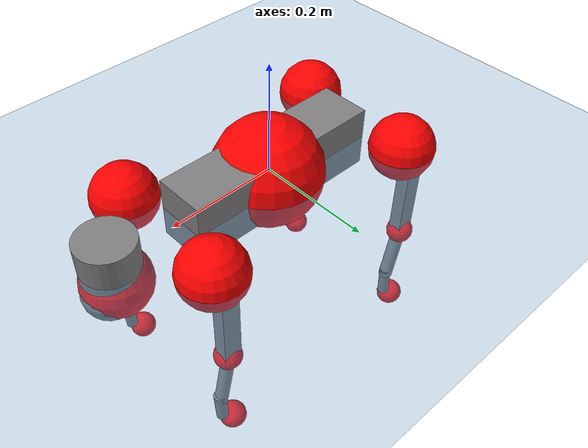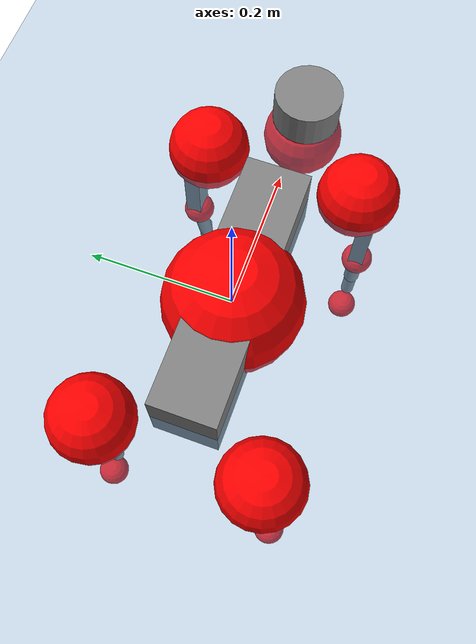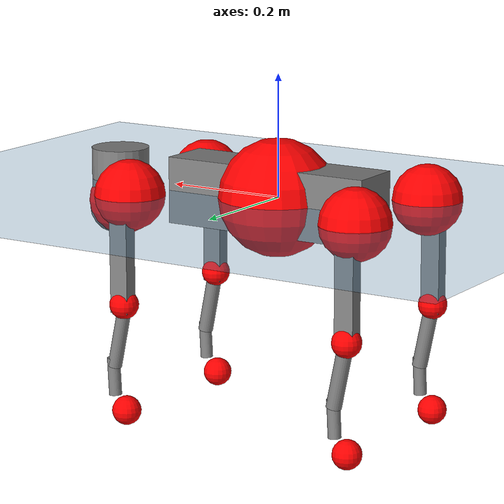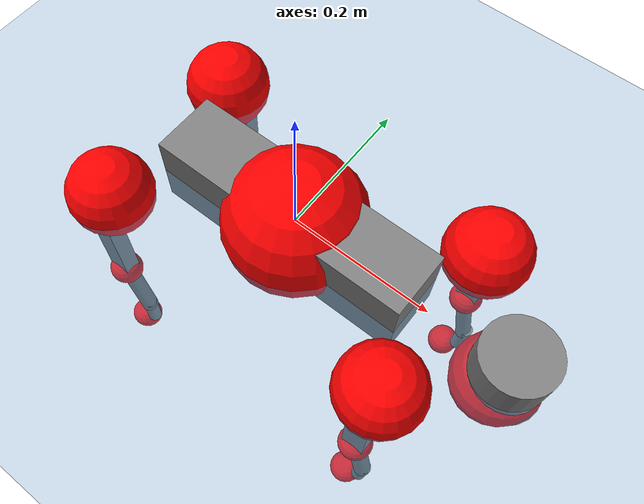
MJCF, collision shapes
<mujoco model="go2">
  <compiler angle="radian" assetdir="assets" balanceinertia="true" inertiafromgeom="false"/>

  <option timestep="0.005" density="1.2" viscosity="2e-05"/>

  <size nkey="1"/>

  <visual>
    <quality shadowsize="8192"/>
    <map shadowclip="0.5"/>
  </visual>

  <default>
    <default class="/">
      <geom contype="0" conaffinity="0" group="1" solref="-1000 -80"/>
      <site size="0.01 0.005 0.005" group="5"/>
      <general forcelimited="true" biastype="affine" gainprm="20" biasprm="0 -20 -0.5"/>
      <default class="go2">
        <joint armature="0.01" damping="0.01" frictionloss="0.2"/>
        <geom condim="1" margin="0.001"/>
        <default class="visual">
          <geom type="mesh" group="2"/>
        </default>
        <default class="collision">
          <geom group="3"/>
          <default class="foot">
            <geom size="0.022 0 0" condim="6" priority="1" friction="0.8 0.02 0.01" solimp="0.015 1 0.022"/>
          </default>
        </default>
        <default class="reward_collision_sphere">
          <geom group="5" rgba="1 0 0 1"/>
        </default>
      </default>
    </default>
  </default>

  <asset>
    <texture type="skybox" colorspace="auto" name="//unnamed_texture_0" builtin="gradient" rgb1="0.95 0.95 0.95" rgb2="0.95 0.95 0.95" width="100" height="600"/>
    <texture type="2d" colorspace="auto" name="texplane" builtin="checker" rgb1="0.345 0.575 0.748" rgb2="0.345 0.575 0.748" markrgb="1 1 1" width="512" height="512"/>
    <material name="MatPlane" class="/" texture="texplane" texuniform="true" texrepeat="2 2" specular="0.9"/>
    <material name="metal" class="/" rgba="0.9 0.95 0.95 1"/>
    <material name="black" class="/" rgba="0 0 0 1"/>
    <material name="white" class="/"/>
    <material name="gray" class="/" rgba="0.671705 0.692426 0.77427 1"/>
    <mesh name="base_0" class="/" file="base_0.obj"/>
    <mesh name="base_1" class="/" file="base_1.obj"/>
    <mesh name="base_2" class="/" file="base_2.obj"/>
    <mesh name="base_3" class="/" file="base_3.obj"/>
    <mesh name="base_4" class="/" file="base_4.obj"/>
    <mesh name="hip_0" class="/" file="hip_0.obj"/>
    <mesh name="hip_1" class="/" file="hip_1.obj"/>
    <mesh name="thigh_0" class="/" file="thigh_0.obj"/>
    <mesh name="thigh_1" class="/" file="thigh_1.obj"/>
    <mesh name="thigh_mirror_0" class="/" file="thigh_mirror_0.obj"/>
    <mesh name="thigh_mirror_1" class="/" file="thigh_mirror_1.obj"/>
    <mesh name="calf_0" class="/" file="calf_0.obj"/>
    <mesh name="calf_1" class="/" file="calf_1.obj"/>
    <mesh name="calf_mirror_0" class="/" file="calf_mirror_0.obj"/>
    <mesh name="calf_mirror_1" class="/" file="calf_mirror_1.obj"/>
    <mesh name="foot" class="/" file="foot.obj"/>
  </asset>

  <worldbody>
    <geom name="floor" class="/" size="100 100 0.125" type="plane" group="0" material="MatPlane"/>
    <light name="toplight_shadow" class="/" pos="0 0 5" dir="0.0990148 0.0990148 -0.990148" type="directional" ambient="0.04 0.04 0.04" diffuse="0.55 0.55 0.55" specular="0.12 0.12 0.12"/>
    <light name="toplight_fill" class="/" pos="0 0 5" dir="0.0990148 0.0990148 -0.990148" type="directional" castshadow="false" ambient="0.04 0.04 0.04" diffuse="0.3 0.3 0.3" specular="0.08 0.08 0.08"/>
    <body name="trunk" childclass="go2" pos="0.0017884 -0.0010275 -0.000459634" quat="1 -9.23437e-05 -5.38427e-05 -0.00025286">
      <inertial pos="0.0229154 -0.000598303 -0.00475864" quat="-0.00218841 0.713565 -0.00385329 0.700575" mass="6.12831" diaginertia="0.170952 0.0807151 0.0103947"/>
      <joint name="//unnamed_joint_0" type="free" armature="0" damping="0" frictionloss="0"/>
      <geom name="//unnamed_geom_1" class="visual" material="black" mesh="base_0"/>
      <geom name="//unnamed_geom_2" class="visual" material="black" mesh="base_1"/>
      <geom name="//unnamed_geom_3" class="visual" material="black" mesh="base_2"/>
      <geom name="//unnamed_geom_4" class="visual" material="white" mesh="base_3"/>
      <geom name="//unnamed_geom_5" class="visual" material="gray" mesh="base_4"/>
      <geom name="trunk_1" class="collision" size="0.181253 0.0450483 0.0549252" type="box"/>
      <geom name="trunk_2" class="collision" size="0.04818 0.043362" pos="0.310575 0 0.00842135" type="cylinder"/>
      <geom name="trunk_3" class="collision" size="0.0452892" pos="0.319293 0 -0.0505281"/>
      <geom name="//unnamed_geom_9" class="reward_collision_sphere" size="0.0963599"/>
      <geom name="//unnamed_geom_10" class="reward_collision_sphere" size="0.057816" pos="0.305126 0 -0.0378961"/>
      <site name="imu" pos="-0.031686 -0.00189948 0.0244286" size="0.00963599"/>
      <camera name="track" pos="0 -1.91785 0" quat="0.707107 0.707107 0 0" mode="trackcom"/>
      <camera name="ego_camera" pos="0.339998 0 0.0378961" quat="-0.5 -0.5 0.5 0.5"/>
      <body name="FL_hip" pos="0.211077 0.0454303 0.000697607" quat="1 -0.000150632 5.95875e-05 -0.000632394">
        <inertial pos="-0.00778117 0.00299735 0.000165746" quat="0.496962 0.499585 0.505171 0.498242" mass="0.609414" diaginertia="0.00136351 0.000479726 0.000202159"/>
        <joint name="FL_hip_joint" pos="0 0 0" axis="0.999897 -0.0118702 0.00811294" range="-1.05928 1.04985" armature="0.00854019" damping="0.0068731" frictionloss="0.185605"/>
        <geom name="//unnamed_geom_11" class="visual" material="metal" mesh="hip_0"/>
        <geom name="//unnamed_geom_12" class="visual" material="gray" mesh="hip_1"/>
        <geom name="//unnamed_geom_13" class="collision" size="0.0443256 0.019272" pos="0 0.0767141 0" quat="0.707107 0.707107 0 0" type="cylinder"/>
        <geom name="//unnamed_geom_14" class="reward_collision_sphere" size="0.057816" pos="0 0.0671248 0"/>
        <body name="FL_thigh" pos="-0.000768065 0.0922134 0.000986306" quat="1 0.000155227 -0.000375195 7.87833e-05">
          <inertial pos="-0.00476527 -0.0212381 -0.029708" quat="0.831264 0.0840454 -0.0227141 0.549018" mass="1.04619" diaginertia="0.00923552 0.00479375 0.000377875"/>
          <joint name="FL_thigh_joint" pos="0 0 0" axis="0.000633036 0.999974 0.00724298" range="-1.59022 3.49" armature="0.0103357" damping="0.00419746" frictionloss="0.195727"/>
          <geom name="//unnamed_geom_15" class="visual" material="metal" mesh="thigh_0"/>
          <geom name="//unnamed_geom_16" class="visual" material="gray" mesh="thigh_1"/>
          <geom name="//unnamed_geom_17" class="collision" size="0.102623 0.0118041 0.0163812" pos="0 0 -0.0896874" quat="0.707107 0 0.707107 0" type="box"/>
          <body name="FL_calf" pos="-0.000403012 -0.00280986 -0.179531" quat="1 0.00026054 -6.46659e-05 7.39539e-05">
            <inertial pos="0.00634349 -0.000327999 -0.119065" quat="0.71299 -0.00811887 -0.00260658 0.701122" mass="0.215179" diaginertia="0.00226062 0.00118633 2.20608e-05"/>
            <joint name="FL_calf_joint" pos="0 0 0" axis="0.0109224 0.999928 -0.00503161" stiffness="0.00279609" range="-2.72004 -0.841821" armature="0.00964649" damping="0.00133404" frictionloss="0.198128"/>
            <geom name="//unnamed_geom_18" class="visual" material="gray" mesh="calf_0"/>
            <geom name="//unnamed_geom_19" class="visual" material="black" mesh="calf_1"/>
            <geom name="FL_calf0" class="collision" size="0.0115632 0.057816" pos="0.00871789 0 -0.0505281" quat="0.994493 0 -0.104807 0" type="cylinder"/>
            <geom name="//unnamed_geom_21" class="collision" size="0.0105996 0.031317" pos="0.0217947 0 -0.124636" quat="0.999688 0 0.0249974 0" type="cylinder"/>
            <geom name="//unnamed_geom_22" class="visual" pos="0 0 -0.179375" quat="1 0 0 0" material="black" mesh="foot"/>
            <geom name="FL_foot" class="foot" size="0.0186017" pos="-0.00217947 0 -0.179375"/>
            <geom name="//unnamed_geom_24" class="reward_collision_sphere" size="0.02409"/>
            <geom name="//unnamed_geom_25" class="reward_collision_sphere" size="0.02409" pos="-0.00217947 0 -0.179375"/>
            <site name="FL_foot" class="foot" pos="-0.00217947 0 -0.179375" size="0.00963599"/>
          </body>
        </body>
      </body>
      <body name="FR_hip" pos="0.209169 -0.0418471 -0.00142961" quat="1 -4.00434e-05 -9.56289e-05 -5.69628e-05">
        <inertial pos="-0.00336531 -0.00263628 -0.00254013" quat="0.497909 0.505623 0.499189 0.497234" mass="0.625657" diaginertia="0.00138977 0.000495131 0.000208596"/>
        <joint name="FR_hip_joint" pos="0 0 0" axis="0.999978 -0.00291791 0.00599494" stiffness="0.00360268" range="-1.09076 1.06082" armature="0.00973931" damping="0.0142556" frictionloss="0.179307"/>
        <geom name="//unnamed_geom_26" class="visual" pos="0 1.01743e-09 4.36397e-08" quat="4.63268e-05 1 0 0" material="metal" mesh="hip_0"/>
        <geom name="//unnamed_geom_27" class="visual" pos="0 1.64938e-09 -1.07938e-07" quat="4.63268e-05 1 0 0" material="gray" mesh="hip_1"/>
        <geom name="//unnamed_geom_28" class="collision" size="0.0443256 0.019272" pos="0 -0.0767141 0" quat="0.707107 0.707107 0 0" type="cylinder"/>
        <geom name="//unnamed_geom_29" class="reward_collision_sphere" size="0.057816" pos="0 -0.0671248 0"/>
        <body name="FR_thigh" pos="0.000548535 -0.0921043 0.000244527" quat="1 1.65915e-05 1.18573e-05 -4.4285e-05">
          <inertial pos="-0.00292293 0.024008 -0.0282587" quat="0.551904 -0.020145 0.0848005 0.82934" mass="1.01819" diaginertia="0.00909112 0.00468834 0.000367707"/>
          <joint name="FR_thigh_joint" pos="0 0 0" axis="8.47167e-05 -1 0.000437079" range="-3.50126 1.55418" armature="0.0100552" damping="0.0100338" frictionloss="0.191553"/>
          <geom name="//unnamed_geom_30" class="visual" material="metal" mesh="thigh_mirror_0"/>
          <geom name="//unnamed_geom_31" class="visual" material="gray" mesh="thigh_mirror_1"/>
          <geom name="//unnamed_geom_32" class="collision" size="0.102623 0.0118041 0.0163812" pos="0 0 -0.0896874" quat="0.707107 0 0.707107 0" type="box"/>
          <body name="FR_calf" pos="-0.000274043 -0.000858498 -0.17782" quat="0.999999 0.000566471 0.000962857 -0.000252651">
            <inertial pos="0.00936571 0.00063578 -0.118035" quat="0.703489 -0.00450116 0.0015537 0.710691" mass="0.211415" diaginertia="0.00226394 0.00120595 2.30871e-05"/>
            <joint name="FR_calf_joint" pos="0 0 0" axis="-0.00326131 -0.999994 0.00100481" stiffness="0.00323203" range="0.792047 2.71551" armature="0.00983492" damping="0.0186671" frictionloss="0.20913"/>
            <geom name="//unnamed_geom_33" class="visual" material="gray" mesh="calf_mirror_0"/>
            <geom name="//unnamed_geom_34" class="visual" material="black" mesh="calf_mirror_1"/>
            <geom name="FR_calf0" class="collision" size="0.0125268 0.057816" pos="0.0108974 0 -0.0505281" quat="0.995004 0 -0.0998334 0" type="cylinder"/>
            <geom name="//unnamed_geom_36" class="collision" size="0.0105996 0.031317" pos="0.0217947 0 -0.124636" quat="0.999688 0 0.0249974 0" type="cylinder"/>
            <geom name="//unnamed_geom_37" class="visual" pos="0 0 -0.179375" quat="1 0 0 0" material="black" mesh="foot"/>
            <geom name="FR_foot" class="foot" size="0.0218002" pos="-0.00217947 0 -0.179375"/>
            <geom name="//unnamed_geom_39" class="reward_collision_sphere" size="0.02409"/>
            <geom name="//unnamed_geom_40" class="reward_collision_sphere" size="0.02409" pos="-0.00217947 0 -0.179375"/>
            <site name="FR_foot" class="foot" pos="-0.00217947 0 -0.179375" size="0.00963599"/>
          </body>
        </body>
      </body>
      <body name="RL_hip" pos="-0.208493 0.0437167 0.00110306" quat="1 3.36888e-05 3.32816e-05 2.71561e-05">
        <inertial pos="0.00798831 -0.000256026 -0.000197226" quat="0.508378 0.50282 0.491251 0.497389" mass="0.611648" diaginertia="0.00136897 0.000482245 0.000199126"/>
        <joint name="RL_hip_joint" pos="0 0 0" axis="-0.999922 -0.00950825 0.00809485" stiffness="0.000583405" range="-1.0398 1.02441" armature="0.00968968" damping="0.00719295" frictionloss="0.202543"/>
        <geom name="//unnamed_geom_41" class="visual" pos="-2.157e-09 0 -4.22822e-07" quat="4.63268e-05 0 1 0" material="metal" mesh="hip_0"/>
        <geom name="//unnamed_geom_42" class="visual" pos="-3.49676e-09 0 -3.74983e-07" quat="4.63268e-05 0 1 0" material="gray" mesh="hip_1"/>
        <geom name="//unnamed_geom_43" class="collision" size="0.0443256 0.019272" pos="0 0.0767141 0" quat="0.707107 0.707107 0 0" type="cylinder"/>
        <geom name="//unnamed_geom_44" class="reward_collision_sphere" size="0.057816" pos="0 0.0671248 0"/>
        <body name="RL_thigh" pos="-0.000236829 0.0905777 0.000557302" quat="1 -0.000264595 -0.000347478 -0.000246468">
          <inertial pos="-0.00429207 -0.0189736 -0.0272452" quat="0.829067 0.0801244 -0.0199457 0.553019" mass="1.0348" diaginertia="0.00917744 0.00479447 0.000363821"/>
          <joint name="RL_thigh_joint" pos="0 0 0" axis="0.00378329 0.999974 0.00617672" range="-0.516395 4.533" armature="0.0106475" damping="0.00325761" frictionloss="0.206808"/>
          <geom name="//unnamed_geom_45" class="visual" material="metal" mesh="thigh_0"/>
          <geom name="//unnamed_geom_46" class="visual" material="gray" mesh="thigh_1"/>
          <geom name="//unnamed_geom_47" class="collision" size="0.102623 0.0118041 0.0163812" pos="0 0 -0.0896874" quat="0.707107 0 0.707107 0" type="box"/>
          <body name="RL_calf" pos="-0.000349152 0.0010859 -0.181719" quat="0.999999 8.64514e-06 -3.73349e-06 -0.00112538">
            <inertial pos="0.00744573 -0.000317267 -0.116525" quat="0.709165 0.00264586 -0.00496603 0.70502" mass="0.210619" diaginertia="0.00229541 0.00119922 2.24352e-05"/>
            <joint name="RL_calf_joint" pos="0 0 0" axis="0.000110517 0.999999 0.00154147" stiffness="0.00151728" range="-2.73017 -0.840539" armature="0.00941413" damping="0.00769993" frictionloss="0.182906"/>
            <geom name="//unnamed_geom_48" class="visual" material="gray" mesh="calf_0"/>
            <geom name="//unnamed_geom_49" class="visual" material="black" mesh="calf_1"/>
            <geom name="RL_calf0" class="collision" size="0.0125268 0.057816" pos="0.0108974 0 -0.0505281" quat="0.995004 0 -0.0998334 0" type="cylinder"/>
            <geom name="//unnamed_geom_51" class="collision" size="0.0105996 0.031317" pos="0.0217947 0 -0.124636" quat="0.999688 0 0.0249974 0" type="cylinder"/>
            <geom name="//unnamed_geom_52" class="visual" pos="0 0 -0.179375" quat="1 0 0 0" material="black" mesh="foot"/>
            <geom name="RL_foot" class="foot" size="0.0177444" pos="-0.00217947 0 -0.179375"/>
            <geom name="//unnamed_geom_54" class="reward_collision_sphere" size="0.02409"/>
            <geom name="//unnamed_geom_55" class="reward_collision_sphere" size="0.02409" pos="-0.00217947 0 -0.179375"/>
            <site name="RL_foot" class="foot" pos="-0.00217947 0 -0.179375" size="0.00963599"/>
          </body>
        </body>
      </body>
      <body name="RR_hip" pos="-0.212863 -0.0459835 -0.000358647" quat="1 -0.000450359 0.000178369 4.54255e-05">
        <inertial pos="0.00627804 -0.00235737 -0.000286461" quat="0.49312 0.494749 0.497562 0.514284" mass="0.60751" diaginertia="0.0013535 0.000484395 0.000203282"/>
        <joint name="RR_hip_joint" pos="0 0 0" axis="-0.999924 -0.0111198 0.00526181" stiffness="0.0038346" range="-1.04795 1.02863" armature="0.0100242" damping="0.00031165" frictionloss="0.189626"/>
        <geom name="//unnamed_geom_56" class="visual" pos="2.15247e-09 1.01743e-09 -4.66462e-07" quat="2.14617e-09 4.63268e-05 4.63268e-05 -1" material="metal" mesh="hip_0"/>
        <geom name="//unnamed_geom_57" class="visual" pos="3.50796e-09 1.64938e-09 -2.67045e-07" quat="2.14617e-09 4.63268e-05 4.63268e-05 -1" material="gray" mesh="hip_1"/>
        <geom name="//unnamed_geom_58" class="collision" size="0.0443256 0.019272" pos="0 -0.0767141 0" quat="0.707107 0.707107 0 0" type="cylinder"/>
        <geom name="//unnamed_geom_59" class="reward_collision_sphere" size="0.057816" pos="0 -0.0671248 0"/>
        <body name="RR_thigh" pos="0.00044264 -0.0910605 0.000535142" quat="1 0.000164683 0.000127167 -0.000205914">
          <inertial pos="-0.00434056 0.0210775 -0.0284276" quat="0.55975 -0.0200928 0.0913365 0.823368" mass="1.03416" diaginertia="0.00910127 0.00479877 0.000382162"/>
          <joint name="RR_thigh_joint" pos="0 0 0" axis="-9.53764e-05 -1 0.000923794" range="-4.53722 0.504278" armature="0.0102538" damping="0.00935617" frictionloss="0.199454"/>
          <geom name="//unnamed_geom_60" class="visual" material="metal" mesh="thigh_mirror_0"/>
          <geom name="//unnamed_geom_61" class="visual" material="gray" mesh="thigh_mirror_1"/>
          <geom name="//unnamed_geom_62" class="collision" size="0.102623 0.0118041 0.0163812" pos="0 0 -0.0896874" quat="0.707107 0 0.707107 0" type="box"/>
          <body name="RR_calf" pos="0.000600512 -0.00151867 -0.180101" quat="1 3.20693e-05 4.42863e-05 2.07242e-05">
            <inertial pos="0.00498275 -0.00168032 -0.117121" quat="0.703519 -0.00293982 0.00230239 0.710667" mass="0.218349" diaginertia="0.00226627 0.00120184 2.23925e-05"/>
            <joint name="RR_calf_joint" pos="0 0 0" axis="0.00723614 -0.999974 6.29975e-05" stiffness="0.00125812" range="0.85894 2.76857" armature="0.00956346" damping="0.0106506" frictionloss="0.213797"/>
            <geom name="//unnamed_geom_63" class="visual" material="gray" mesh="calf_mirror_0"/>
            <geom name="//unnamed_geom_64" class="visual" material="black" mesh="calf_mirror_1"/>
            <geom name="RR_calf0" class="collision" size="0.0125268 0.057816" pos="0.0108974 0 -0.0505281" quat="0.995004 0 -0.0998334 0" type="cylinder"/>
            <geom name="//unnamed_geom_66" class="collision" size="0.0105996 0.031317" pos="0.0217947 0 -0.124636" quat="0.999688 0 0.0249974 0" type="cylinder"/>
            <geom name="//unnamed_geom_67" class="visual" pos="0 0 -0.179375" quat="1 0 0 0" material="black" mesh="foot"/>
            <geom name="RR_foot" class="foot" size="0.0228731" pos="-0.00217947 0 -0.179375"/>
            <geom name="//unnamed_geom_69" class="reward_collision_sphere" size="0.02409"/>
            <geom name="//unnamed_geom_70" class="reward_collision_sphere" size="0.02409" pos="-0.00217947 0 -0.179375"/>
            <site name="RR_foot" class="foot" pos="-0.00217947 0 -0.179375" size="0.00963599"/>
          </body>
        </body>
      </body>
    </body>
  </worldbody>

  <contact>
    <pair class="/" geom1="floor" geom2="FL_foot" name="//unnamed_contact_0"/>
    <pair class="/" geom1="floor" geom2="FR_foot" name="//unnamed_contact_1"/>
    <pair class="/" geom1="floor" geom2="RL_foot" name="//unnamed_contact_2"/>
    <pair class="/" geom1="floor" geom2="RR_foot" name="//unnamed_contact_3"/>
  </contact>

  <actuator>
    <general name="FL_hip" class="/" joint="FL_hip_joint" forcerange="-22.9056 22.9056" gainprm="19.4482" biasprm="0 -19.4482 -0.472641"/>
    <general name="FL_thigh" class="/" joint="FL_thigh_joint" forcerange="-21.6343 21.6343" gainprm="19.4482" biasprm="0 -19.4482 -0.472641"/>
    <general name="FL_calf" class="/" joint="FL_calf_joint" forcerange="-42.4955 42.4955" gainprm="19.4482" biasprm="0 -19.4482 -0.472641"/>
    <general name="FR_hip" class="/" joint="FR_hip_joint" forcerange="-22.8646 22.8646" gainprm="19.4482" biasprm="0 -19.4482 -0.472641"/>
    <general name="FR_thigh" class="/" joint="FR_thigh_joint" forcerange="-23.2501 23.2501" gainprm="19.4482" biasprm="0 -19.4482 -0.472641"/>
    <general name="FR_calf" class="/" joint="FR_calf_joint" forcerange="-44.1707 44.1707" gainprm="19.4482" biasprm="0 -19.4482 -0.472641"/>
    <general name="RL_hip" class="/" joint="RL_hip_joint" forcerange="-22.9317 22.9317" gainprm="19.4482" biasprm="0 -19.4482 -0.472641"/>
    <general name="RL_thigh" class="/" joint="RL_thigh_joint" forcerange="-22.9748 22.9748" gainprm="19.4482" biasprm="0 -19.4482 -0.472641"/>
    <general name="RL_calf" class="/" joint="RL_calf_joint" forcerange="-44.9825 44.9825" gainprm="19.4482" biasprm="0 -19.4482 -0.472641"/>
    <general name="RR_hip" class="/" joint="RR_hip_joint" forcerange="-22.5636 22.5636" gainprm="19.4482" biasprm="0 -19.4482 -0.472641"/>
    <general name="RR_thigh" class="/" joint="RR_thigh_joint" forcerange="-22.0283 22.0283" gainprm="19.4482" biasprm="0 -19.4482 -0.472641"/>
    <general name="RR_calf" class="/" joint="RR_calf_joint" forcerange="-39.949 39.949" gainprm="19.4482" biasprm="0 -19.4482 -0.472641"/>
  </actuator>

  <sensor>
    <gyro site="imu" name="imu_angular_velocity"/>
    <velocimeter site="imu" name="imu_linear_velocity"/>
    <framelinvel objtype="site" objname="FL_foot" name="FL_foot_global_linear_velocity"/>
    <framelinvel objtype="site" objname="FR_foot" name="FR_foot_global_linear_velocity"/>
    <framelinvel objtype="site" objname="RL_foot" name="RL_foot_global_linear_velocity"/>
    <framelinvel objtype="site" objname="RR_foot" name="RR_foot_global_linear_velocity"/>
  </sensor>

  <keyframe>
    <key name="home" qpos="0 0 0.325 1 0 0 0 0.1 0.8 -1.5 -0.1 -0.8 1.5 -0.1 0.8 -1.5 0.1 -0.8 1.5"/>
  </keyframe>
</mujoco>
